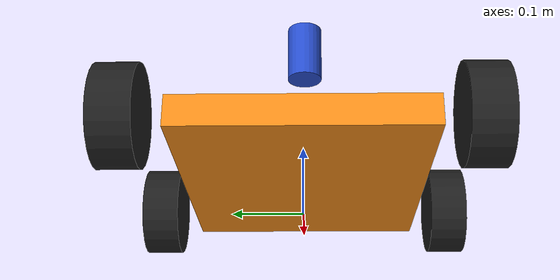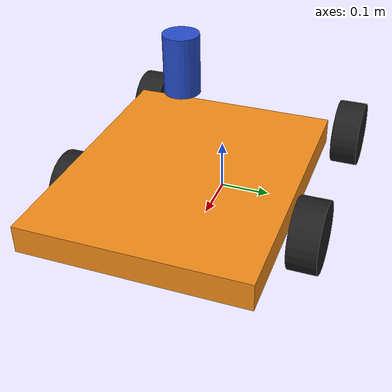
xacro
<?xml version="1.0"?>
<!-- Basic differential drive mobile base -->
<robot xmlns:xacro="http://www.ros.org/wiki/xacro" name="dumbot">

  <xacro:include filename="$(find dumbot_bringup)/urdf/roboclaw_description.urdf.xacro" />

  <!-- Import Rviz colors -->
  <xacro:include filename="$(find dumbot_bringup)/urdf/roboclaw.materials.xacro" />

  <!-- Import dumbot ros2_control description -->
  <xacro:include filename="$(find dumbot_bringup)/urdf/roboclaw.ros2_control.xacro" />

  <xacro:dumbot_base />

  <xacro:diffbot_ros2_control
  left_port="/dev/serial/by-id/usb-Basicmicro_Inc._USB_Roboclaw_2x15A_lef-if00"
  right_port="/dev/serial/by-id/usb-Basicmicro_Inc._USB_Roboclaw_2x15A_righ-if00" />

</robot>

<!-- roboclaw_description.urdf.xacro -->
<robot xmlns:xacro="http://www.ros.org/wiki/xacro">

  <xacro:macro name="dumbot_base">

    <xacro:property name="PI" value="3.1415926535897931"/>
    <xacro:property name="base_mass" value="0.3"/>
    <xacro:property name="base_width" value="0.4"/>
    <xacro:property name="base_length" value="0.5"/>
    <xacro:property name="base_height" value="0.05"/>

    <xacro:property name="wheel_mass" value="0.3"/>
    <xacro:property name="wheel_len" value="0.055"/>
    <xacro:property name="wheel_radius" value="0.0675"/>

    <!-- Front/rear wheel x positions -->
    <xacro:property name="front_wheel_x" value="${3*base_length/8}"/>
    <xacro:property name="rear_wheel_x" value="${-3*base_length/8}"/> <!-- why is rear positive? -->

    <link name="base_footprint" />

    <joint name="base_joint" type="fixed">
      <parent link="base_footprint"/>
      <child link="base_link"/>
      <origin xyz="0 0 ${wheel_radius}" rpy="0 0 0"/>
    </joint>

    <link name="base_link">
      <collision>
        <origin xyz="${3*base_length/8} 0 ${wheel_radius}" rpy="0 0 0"/>
        <geometry>
          <box size="${base_length} ${base_width} ${base_height}"/>
        </geometry>
      </collision>

      <visual>
        <origin xyz="${3*base_length/8} 0 ${wheel_radius}" rpy="0 0 0"/>
        <geometry>
          <box size="${base_length} ${base_width} ${base_height}"/>
        </geometry>
        <material name="orange"/>
      </visual>

      <inertial>
        <origin xyz="0 0 0" rpy="0 0 0"/>
        <mass value="${base_mass}"/>
        <inertia
          ixx="${base_mass / 12.0 * (base_length*base_length + base_height*base_height)}"
          ixy="0.0"
          ixz="0.0"
          iyy="${base_mass / 12.0 * (base_height*base_height + base_width*base_width)}"
          iyz="0.0"
          izz="${base_mass / 12.0 * (base_width*base_width + base_length*base_length)}"/>
      </inertial>
    </link>

    <!-- Front left wheel -->
    <joint name="front_left_wheel_joint" type="continuous">
      <parent link="base_link"/>
      <child link="front_left_wheel"/>
      <origin xyz="${front_wheel_x} ${-base_width/2 - wheel_len/2} 0" rpy="0 0 0"/>
      <axis xyz="0 1 0"/>
      <dynamics damping="0.2"/>
    </joint>

    <link name="front_left_wheel">
      <collision>
        <origin xyz="0 0 0" rpy="${PI/2} 0 0"/>
        <geometry>
          <cylinder length="${wheel_len}" radius="${wheel_radius}"/>
        </geometry>
      </collision>

      <visual>
        <origin xyz="0 0 0" rpy="${PI/2} 0 0"/>
        <geometry>
          <cylinder length="${wheel_len}" radius="${wheel_radius}"/>
        </geometry>
        <material name="black"/>
      </visual>

      <inertial>
        <origin xyz="0 0 0" rpy="${PI/2} 0 0"/>
        <mass value="${wheel_mass}"/>
        <inertia
          ixx="${wheel_mass / 12.0 * (3*wheel_radius*wheel_radius + wheel_len*wheel_len)}"
          ixy="0.0"
          ixz="0.0"
          iyy="${wheel_mass / 2.0 * wheel_radius*wheel_radius}"
          iyz="0.0"
          izz="${wheel_mass / 12.0 * (3*wheel_radius*wheel_radius + wheel_len*wheel_len)}"/>
      </inertial>
    </link>

    <!-- Front right wheel -->
    <joint name="front_right_wheel_joint" type="continuous">
      <parent link="base_link"/>
      <child link="front_right_wheel"/>
      <origin xyz="${front_wheel_x} ${base_width/2 + wheel_len/2} 0" rpy="0 0 0"/>
      <axis xyz="0 1 0"/>
      <dynamics damping="0.2"/>
    </joint>

    <link name="front_right_wheel">
      <collision>
        <origin xyz="0 0 0" rpy="${PI/2} 0 0"/>
        <geometry>
          <cylinder length="${wheel_len}" radius="${wheel_radius}"/>
        </geometry>
      </collision>

      <visual>
        <origin xyz="0 0 0" rpy="${PI/2} 0 0"/>
        <geometry>
          <cylinder length="${wheel_len}" radius="${wheel_radius}"/>
        </geometry>
        <material name="black"/>
      </visual>

      <inertial>
        <origin xyz="0 0 0" rpy="${PI/2} 0 0"/>
        <mass value="${wheel_mass}"/>
        <inertia
          ixx="${wheel_mass / 12.0 * (3*wheel_radius*wheel_radius + wheel_len*wheel_len)}"
          ixy="0.0"
          ixz="0.0"
          iyy="${wheel_mass / 2.0 * wheel_radius*wheel_radius}"
          iyz="0.0"
          izz="${wheel_mass / 12.0 * (3*wheel_radius*wheel_radius + wheel_len*wheel_len)}"/>
      </inertial>
    </link>

    <!-- Rear left wheel -->
    <joint name="rear_left_wheel_joint" type="continuous">
      <parent link="base_link"/>
      <child link="rear_left_wheel"/>
      <origin xyz="${rear_wheel_x} ${-base_width/2 - wheel_len/2} 0" rpy="0 0 0"/>
      <axis xyz="0 1 0"/>
      <dynamics damping="0.2"/>
    </joint>

    <link name="rear_left_wheel">
      <collision>
        <origin xyz="0 0 0" rpy="${PI/2} 0 0"/>
        <geometry>
          <cylinder length="${wheel_len}" radius="${wheel_radius}"/>
        </geometry>
      </collision>

      <visual>
        <origin xyz="0 0 0" rpy="${PI/2} 0 0"/>
        <geometry>
          <cylinder length="${wheel_len}" radius="${wheel_radius}"/>
        </geometry>
        <material name="black"/>
      </visual>

      <inertial>
        <origin xyz="0 0 0" rpy="${PI/2} 0 0"/>
        <mass value="${wheel_mass}"/>
        <inertia
          ixx="${wheel_mass / 12.0 * (3*wheel_radius*wheel_radius + wheel_len*wheel_len)}"
          ixy="0.0"
          ixz="0.0"
          iyy="${wheel_mass / 2.0 * wheel_radius*wheel_radius}"
          iyz="0.0"
          izz="${wheel_mass / 12.0 * (3*wheel_radius*wheel_radius + wheel_len*wheel_len)}"/>
      </inertial>
    </link>

    <!-- Rear right wheel -->
    <joint name="rear_right_wheel_joint" type="continuous">
      <parent link="base_link"/>
      <child link="rear_right_wheel"/>
      <origin xyz="${rear_wheel_x} ${base_width/2 + wheel_len/2} 0" rpy="0 0 0"/>
      <axis xyz="0 1 0"/>
      <dynamics damping="0.2"/>
    </joint>

    <link name="rear_right_wheel">
      <collision>
        <origin xyz="0 0 0" rpy="${PI/2} 0 0"/>
        <geometry>
          <cylinder length="${wheel_len}" radius="${wheel_radius}"/>
        </geometry>
      </collision>

      <visual>
        <origin xyz="0 0 0" rpy="${PI/2} 0 0"/>
        <geometry>
          <cylinder length="${wheel_len}" radius="${wheel_radius}"/>
        </geometry>
        <material name="black"/>
      </visual>

      <inertial>
        <origin xyz="0 0 0" rpy="${PI/2} 0 0"/>
        <mass value="${wheel_mass}"/>
        <inertia
          ixx="${wheel_mass / 12.0 * (3*wheel_radius*wheel_radius + wheel_len*wheel_len)}"
          ixy="0.0"
          ixz="0.0"
          iyy="${wheel_mass / 2.0 * wheel_radius*wheel_radius}"
          iyz="0.0"
          izz="${wheel_mass / 12.0 * (3*wheel_radius*wheel_radius + wheel_len*wheel_len)}"/>
      </inertial>
    </link>

    <!-- Casters -->

        <!-- LiDAR properties -->
    <xacro:property name="lidar_x_position" value="0.1"/> <!-- Center the LiDAR on back axle (x=0) -->
    <xacro:property name="lidar_y_position" value="0.0"/> <!-- LiDAR centered on y-axis (y=0) -->
    <xacro:property name="lidar_height" value="0.15"/> <!-- height -->
    <xacro:property name="lidar_angle" value="0"/> <!-- LiDAR orientation in radians (0 for horizontal) -->

    <!-- LiDAR link -->
    <link name="laser">
        <visual>
            <origin xyz="${lidar_x_position} ${lidar_y_position} ${lidar_height}" rpy="0 ${lidar_angle} 0"/>
            <geometry>
                <cylinder radius="0.03" length="0.1"/> <!-- Adjust size of the LiDAR -->
            </geometry>
            <material name="blue"/>
        </visual>
        <collision>
            <origin xyz="${lidar_x_position} ${lidar_y_position} ${lidar_height}" rpy="0 ${lidar_angle} 0"/>
            <geometry>
                <cylinder radius="0.03" length="0.1"/>
            </geometry>
        </collision>
        <inertial>
            <origin xyz="0 0 0"/>
            <mass value="0.5"/> <!-- Adjust LiDAR mass if needed -->
            <inertia ixx="0.001" ixy="0.0" ixz="0.0" iyy="0.001" iyz="0.0" izz="0.001"/>
        </inertial>
    </link>

    <!-- LiDAR joint -->
    <joint name="lidar_joint" type="fixed">
        <parent link="base_link"/>
        <child link="laser"/>
        <origin xyz="${lidar_x_position} ${lidar_y_position} ${lidar_height}" rpy="0 ${lidar_angle} 0"/>
    </joint>

  </xacro:macro>

</robot>
